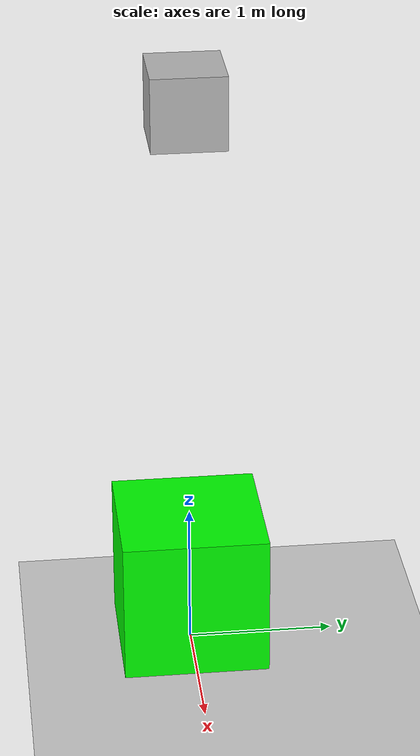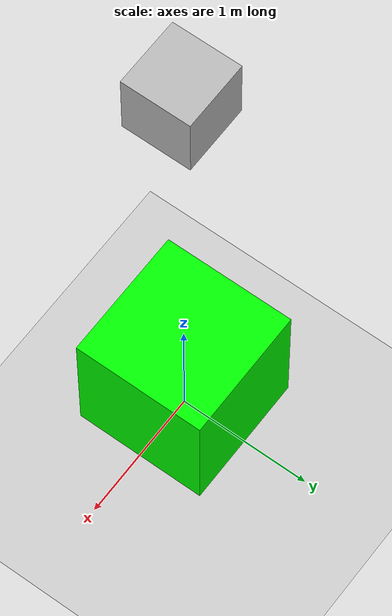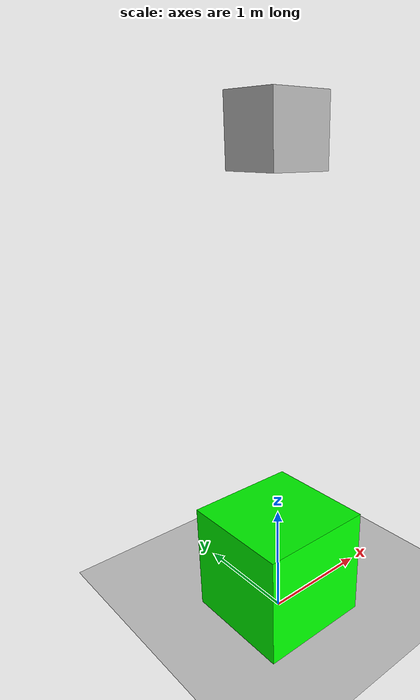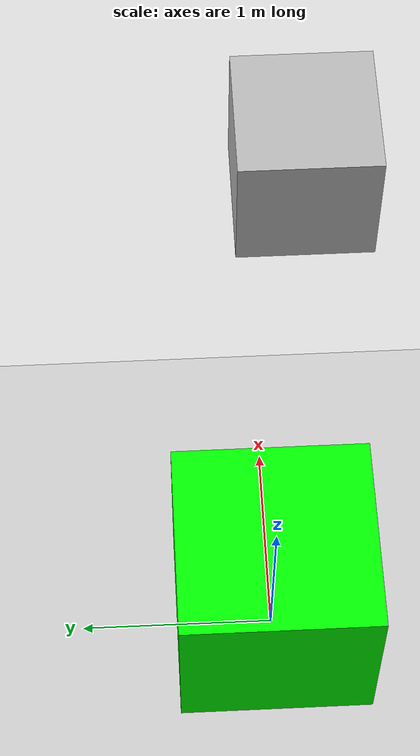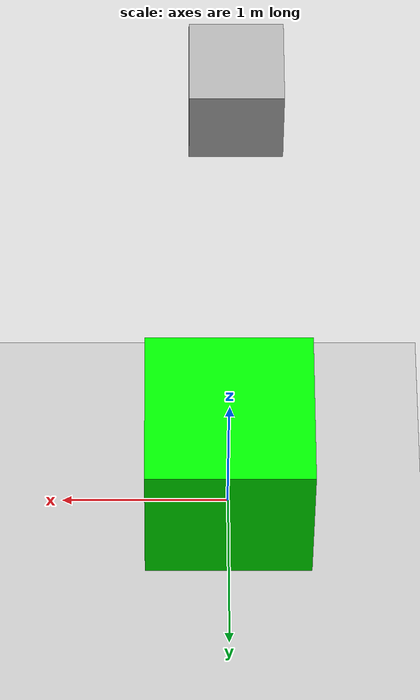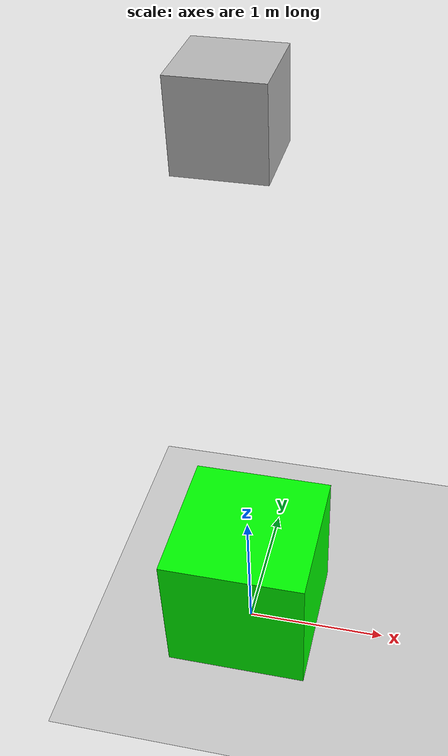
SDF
<?xml version="1.0" ?>

<sdf version="1.6">
  <world name="touch">
    <plugin
      filename="ignition-gazebo-physics-system"
      name="ignition::gazebo::systems::Physics">
    </plugin>
    <plugin
      filename="ignition-gazebo-contact-system"
      name="ignition::gazebo::systems::Contact">
    </plugin>
    <plugin
      filename="ignition-gazebo-scene-broadcaster-system"
      name="ignition::gazebo::systems::SceneBroadcaster">
    </plugin>

    <light type="directional" name="sun">
      <cast_shadows>true</cast_shadows>
      <pose>0 0 10 0 0 0</pose>
      <diffuse>1 1 1 1</diffuse>
      <specular>0.5 0.5 0.5 1</specular>
      <attenuation>
        <range>1000</range>
        <constant>0.9</constant>
        <linear>0.01</linear>
        <quadratic>0.001</quadratic>
      </attenuation>
      <direction>-0.5 0.1 -0.9</direction>
    </light>

    <model name="ground_plane">
      <static>true</static>
      <link name="link">
        <collision name="collision">
          <geometry>
            <plane>
              <normal>0 0 1</normal>
              <size>100 100</size>
            </plane>
          </geometry>
        </collision>
        <visual name="visual">
          <geometry>
            <plane>
              <normal>0 0 1</normal>
              <size>100 100</size>
            </plane>
          </geometry>
          <material>
            <ambient>0.8 0.8 0.8 1</ambient>
            <diffuse>0.8 0.8 0.8 1</diffuse>
            <specular>0.8 0.8 0.8 1</specular>
          </material>
        </visual>
      </link>
    </model>

    <model name="white_box">
      <pose>0 0 4 0 0 0</pose>

      <link name="link">
        <collision name="collision">
          <geometry>
            <box>
              <size>0.5 0.5 0.5</size>
            </box>
          </geometry>
          <max_contacts>10</max_contacts>
          <surface>
            <bounce/>
            <friction>
              <ode>
                <mu>10</mu>
                <mu2>10</mu2>
                <fdir1>0 0 1</fdir1>
                <slip1>10</slip1>
                <slip2>10</slip2>
              </ode>
              <torsional>
                <ode/>
              </torsional>
            </friction>
            <contact>
              <ode>
                <min_depth>0.1</min_depth>
                <kp>1e+03</kp>
                <kd>0</kd>
                <max_vel>100</max_vel>
              </ode>
            </contact>
          </surface>
        </collision>
        <visual name="visual">
          <geometry>
            <box>
              <size>0.5 0.5 0.5</size>
            </box>
          </geometry>
        </visual>

        <sensor name="white_box_sensor" type="contact">
          <contact>
            <collision>collision</collision>
          </contact>
        </sensor>

      </link>

      <plugin
        filename="ignition-gazebo-touchplugin-system"
        name="ignition::gazebo::systems::TouchPlugin">
        <target>green_box_for_white</target>
        <time>3</time>
        <namespace>white_touches_only_green</namespace>
        <enabled>true</enabled>
      </plugin>
    </model>

    <model name="green_box_for_white">
      <pose>0 0 0.5 0 0 0</pose>
      <link name="link">
        <collision name="collision">
          <geometry>
            <box>
              <size>1 1 1</size>
            </box>
          </geometry>
          <max_contacts>10</max_contacts>
          <surface>
            <bounce/>
            <friction>
              <ode>
                <mu>10</mu>
                <mu2>10</mu2>
                <fdir1>0 0 1</fdir1>
                <slip1>10</slip1>
                <slip2>10</slip2>
              </ode>
              <torsional>
                <ode/>
              </torsional>
            </friction>
            <contact>
              <ode>
                <min_depth>0.3</min_depth>
                <kp>1e+03</kp>
                <kd>0</kd>
                <max_vel>100</max_vel>
              </ode>
            </contact>
          </surface>
        </collision>
        <visual name="visual">
          <geometry>
            <box>
              <size>1 1 1</size>
            </box>
          </geometry>
          <material>
            <ambient>0 1 0 1</ambient>
            <diffuse>0 1 0 1</diffuse>
          </material>
        </visual>
      </link>
    </model>
  </world>
</sdf>
